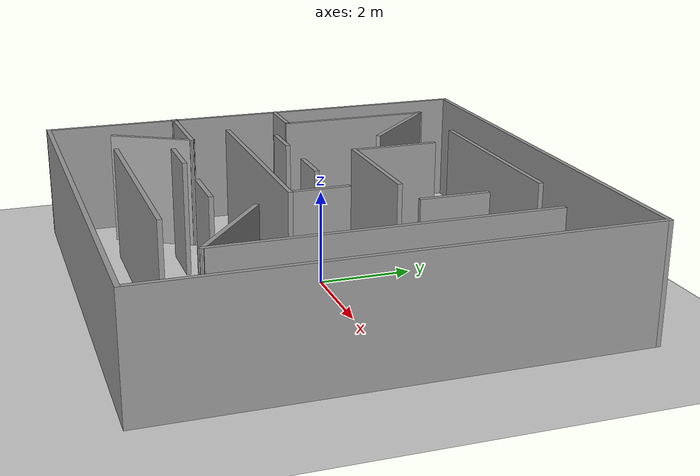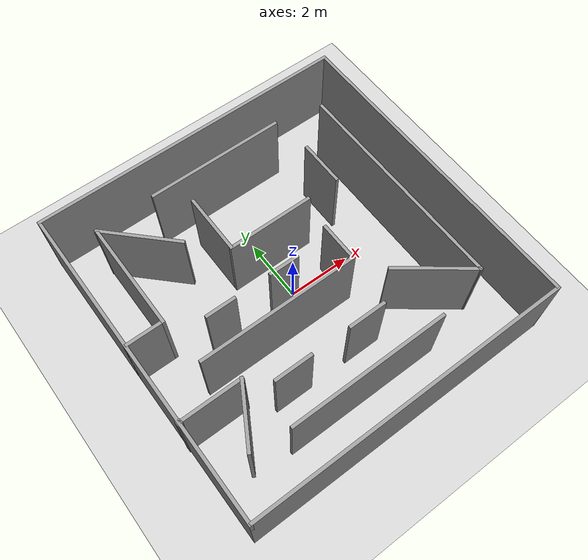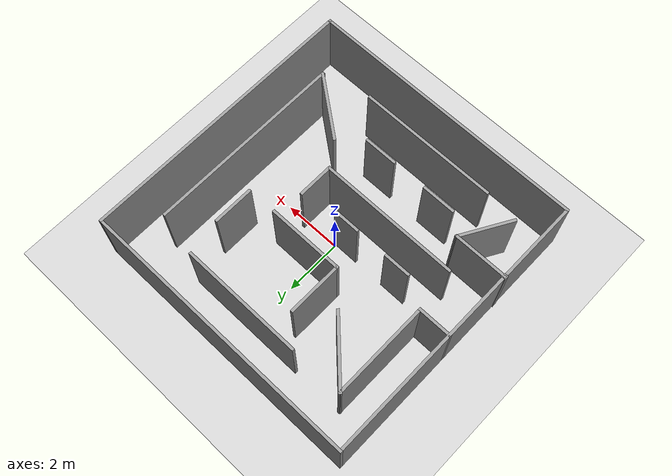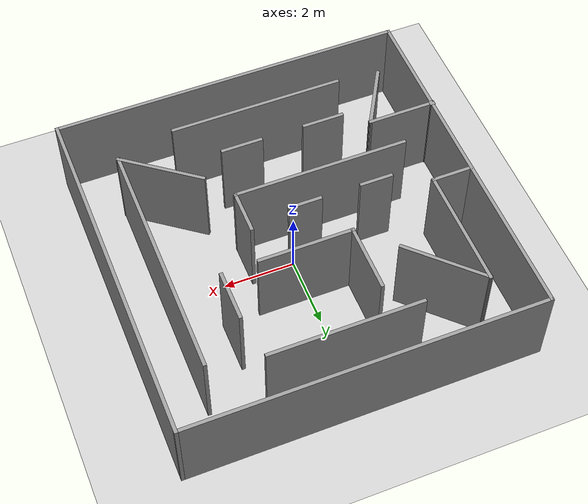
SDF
<sdf version="1.4">
  <world name="default">

    <scene>
      <ambient>0.4 0.4 0.4 1</ambient>
      <background>0.7 0.7 0.7 1</background>
      <shadows>true</shadows>
    </scene>

    <!-- A global light source -->
    <include>
      <uri>model://sun</uri>
    </include>

    <!-- A ground plane -->
    <include>
      <uri>model://ground_plane</uri>
    </include>

    <physics type="ode">
      <real_time_update_rate>1000.0</real_time_update_rate>
      <max_step_size>0.001</max_step_size>
      <real_time_factor>1</real_time_factor>
      <ode>
        <solver>
          <type>quick</type>
          <iters>150</iters>
          <precon_iters>0</precon_iters>
          <sor>1.400000</sor>
          <use_dynamic_moi_rescaling>1</use_dynamic_moi_rescaling>
        </solver>
        <constraints>
          <cfm>0.00001</cfm>
          <erp>0.2</erp>
          <contact_max_correcting_vel>2000.000000</contact_max_correcting_vel>
          <contact_surface_layer>0.01000</contact_surface_layer>
        </constraints>
      </ode>
    </physics>

    <!-- A turtlebot symbol -->
    <include>
      <uri>models://maze_world</uri>
    </include>

  </world>

</sdf>

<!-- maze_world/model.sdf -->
<sdf version='1.7'>
  <model name='Untitled'>
    <pose>-0.0125 0 0 0 -0 0</pose>
    <link name='Wall_0'>
      <collision name='Wall_0_Collision'>
        <geometry>
          <box>
            <size>10 0.1 2.5</size>
          </box>
        </geometry>
        <pose>0 0 1.25 0 -0 0</pose>
      </collision>
      <visual name='Wall_0_Visual'>
        <pose>0 0 1.25 0 -0 0</pose>
        <geometry>
          <box>
            <size>10 0.1 2.5</size>
          </box>
        </geometry>
        <material>
          <script>
            <uri>file://media/materials/scripts/gazebo.material</uri>
            <name>Gazebo/Grey</name>
          </script>
          <ambient>1 1 1 1</ambient>
        </material>
        <meta>
          <layer>0</layer>
        </meta>
      </visual>
      <pose>0.0125 4.962 0 0 -0 3.14159</pose>
    </link>
    <link name='Wall_12'>
      <collision name='Wall_12_Collision'>
        <geometry>
          <box>
            <size>10.024 0.1 2.5</size>
          </box>
        </geometry>
        <pose>0 0 1.25 0 -0 0</pose>
      </collision>
      <visual name='Wall_12_Visual'>
        <pose>0 0 1.25 0 -0 0</pose>
        <geometry>
          <box>
            <size>10.024 0.1 2.5</size>
          </box>
        </geometry>
        <material>
          <script>
            <uri>file://media/materials/scripts/gazebo.material</uri>
            <name>Gazebo/Grey</name>
          </script>
          <ambient>1 1 1 1</ambient>
        </material>
        <meta>
          <layer>0</layer>
        </meta>
      </visual>
      <pose>-4.9375 0 0 0 -0 -1.5708</pose>
    </link>
    <link name='Wall_13'>
      <collision name='Wall_13_Collision'>
        <geometry>
          <box>
            <size>10 0.1 2.5</size>
          </box>
        </geometry>
        <pose>0 0 1.25 0 -0 0</pose>
      </collision>
      <visual name='Wall_13_Visual'>
        <pose>0 0 1.25 0 -0 0</pose>
        <geometry>
          <box>
            <size>10 0.1 2.5</size>
          </box>
        </geometry>
        <material>
          <script>
            <uri>file://media/materials/scripts/gazebo.material</uri>
            <name>Gazebo/Grey</name>
          </script>
          <ambient>1 1 1 1</ambient>
        </material>
        <meta>
          <layer>0</layer>
        </meta>
      </visual>
      <pose>0.0125 -4.962 0 0 -0 0</pose>
    </link>
    <link name='Wall_14'>
      <collision name='Wall_14_Collision'>
        <geometry>
          <box>
            <size>10.024 0.1 2.5</size>
          </box>
        </geometry>
        <pose>0 0 1.25 0 -0 0</pose>
      </collision>
      <visual name='Wall_14_Visual'>
        <pose>0 0 1.25 0 -0 0</pose>
        <geometry>
          <box>
            <size>10.024 0.1 2.5</size>
          </box>
        </geometry>
        <material>
          <script>
            <uri>file://media/materials/scripts/gazebo.material</uri>
            <name>Gazebo/Grey</name>
          </script>
          <ambient>1 1 1 1</ambient>
        </material>
        <meta>
          <layer>0</layer>
        </meta>
      </visual>
      <pose>4.9625 0 0 0 -0 1.5708</pose>
    </link>
    <link name='Wall_46'>
      <collision name='Wall_46_Collision'>
        <geometry>
          <box>
            <size>4.312 0.1 2.5</size>
          </box>
        </geometry>
        <pose>0 0 1.25 0 -0 0</pose>
      </collision>
      <visual name='Wall_46_Visual'>
        <pose>0 0 1.25 0 -0 0</pose>
        <geometry>
          <box>
            <size>4.312 0.1 2.5</size>
          </box>
        </geometry>
        <material>
          <script>
            <uri>file://media/materials/scripts/gazebo.material</uri>
            <name>Gazebo/Grey</name>
          </script>
          <ambient>1 1 1 1</ambient>
        </material>
        <meta>
          <layer>0</layer>
        </meta>
      </visual>
      <pose>0.1275 3.827 0 0 -0 0</pose>
    </link>
    <link name='Wall_50'>
      <collision name='Wall_50_Collision'>
        <geometry>
          <box>
            <size>4.9497 0.1 2.5</size>
          </box>
        </geometry>
        <pose>0 0 1.25 0 -0 0</pose>
      </collision>
      <visual name='Wall_50_Visual'>
        <pose>0 0 1.25 0 -0 0</pose>
        <geometry>
          <box>
            <size>4.9497 0.1 2.5</size>
          </box>
        </geometry>
        <material>
          <script>
            <uri>file://media/materials/scripts/gazebo.material</uri>
            <name>Gazebo/Grey</name>
          </script>
          <ambient>1 1 1 1</ambient>
        </material>
        <meta>
          <layer>0</layer>
        </meta>
      </visual>
      <pose>-0.3925 -3.745 0 0 -0 0</pose>
    </link>
    <link name='Wall_55'>
      <collision name='Wall_55_Collision'>
        <geometry>
          <box>
            <size>1.217 0.1 2.5</size>
          </box>
        </geometry>
        <pose>0 0 1.25 0 -0 0</pose>
      </collision>
      <visual name='Wall_55_Visual'>
        <pose>0 0 1.25 0 -0 0</pose>
        <geometry>
          <box>
            <size>1.217 0.1 2.5</size>
          </box>
        </geometry>
        <material>
          <script>
            <uri>file://media/materials/scripts/gazebo.material</uri>
            <name>Gazebo/Grey</name>
          </script>
          <ambient>1 1 1 1</ambient>
        </material>
        <meta>
          <layer>0</layer>
        </meta>
      </visual>
      <pose>-4.379 0.447 0 0 -0 0</pose>
    </link>
    <link name='Wall_56'>
      <collision name='Wall_56_Collision'>
        <geometry>
          <box>
            <size>3.45018 0.1 2.5</size>
          </box>
        </geometry>
        <pose>0 0 1.25 0 -0 0</pose>
      </collision>
      <visual name='Wall_56_Visual'>
        <pose>0 0 1.25 0 -0 0</pose>
        <geometry>
          <box>
            <size>3.45018 0.1 2.5</size>
          </box>
        </geometry>
        <material>
          <script>
            <uri>file://media/materials/scripts/gazebo.material</uri>
            <name>Gazebo/Grey</name>
          </script>
          <ambient>1 1 1 1</ambient>
        </material>
        <meta>
          <layer>0</layer>
        </meta>
      </visual>
      <pose>-3.8205 2.122 0 0 -0 1.5708</pose>
    </link>
    <link name='Wall_57'>
      <collision name='Wall_57_Collision'>
        <geometry>
          <box>
            <size>2.50134 0.1 2.5</size>
          </box>
        </geometry>
        <pose>0 0 1.25 0 -0 0</pose>
      </collision>
      <visual name='Wall_57_Visual'>
        <pose>0 0 1.25 0 -0 0</pose>
        <geometry>
          <box>
            <size>2.50134 0.1 2.5</size>
          </box>
        </geometry>
        <material>
          <script>
            <uri>file://media/materials/scripts/gazebo.material</uri>
            <name>Gazebo/Grey</name>
          </script>
          <ambient>1 1 1 1</ambient>
        </material>
        <meta>
          <layer>0</layer>
        </meta>
      </visual>
      <pose>-2.9715 2.948 0 0 -0 -0.785398</pose>
    </link>
    <link name='Wall_59'>
      <collision name='Wall_59_Collision'>
        <geometry>
          <box>
            <size>6.937 0.1 2.5</size>
          </box>
        </geometry>
        <pose>0 0 1.25 0 -0 0</pose>
      </collision>
      <visual name='Wall_59_Visual'>
        <pose>0 0 1.25 0 -0 0</pose>
        <geometry>
          <box>
            <size>6.937 0.1 2.5</size>
          </box>
        </geometry>
        <material>
          <script>
            <uri>file://media/materials/scripts/gazebo.material</uri>
            <name>Gazebo/Grey</name>
          </script>
          <ambient>1 1 1 1</ambient>
        </material>
        <meta>
          <layer>0</layer>
        </meta>
      </visual>
      <pose>3.7295 0.0815 0 0 -0 -1.5708</pose>
    </link>
    <link name='Wall_60'>
      <collision name='Wall_60_Collision'>
        <geometry>
          <box>
            <size>2.5 0.1 2.5</size>
          </box>
        </geometry>
        <pose>0 0 1.25 0 -0 0</pose>
      </collision>
      <visual name='Wall_60_Visual'>
        <pose>0 0 1.25 0 -0 0</pose>
        <geometry>
          <box>
            <size>2.5 0.1 2.5</size>
          </box>
        </geometry>
        <material>
          <script>
            <uri>file://media/materials/scripts/gazebo.material</uri>
            <name>Gazebo/Grey</name>
          </script>
          <ambient>1 1 1 1</ambient>
        </material>
        <meta>
          <layer>0</layer>
        </meta>
      </visual>
      <pose>2.7765 -2.608 0 0 -0 2.48859</pose>
    </link>
    <link name='Wall_62'>
      <collision name='Wall_62_Collision'>
        <geometry>
          <box>
            <size>4.974 0.1 2.5</size>
          </box>
        </geometry>
        <pose>0 0 1.25 0 -0 0</pose>
      </collision>
      <visual name='Wall_62_Visual'>
        <pose>0 0 1.25 0 -0 0</pose>
        <geometry>
          <box>
            <size>4.974 0.1 2.5</size>
          </box>
        </geometry>
        <material>
          <script>
            <uri>file://media/materials/scripts/gazebo.material</uri>
            <name>Gazebo/Grey</name>
          </script>
          <ambient>1 1 1 1</ambient>
        </material>
        <meta>
          <layer>0</layer>
        </meta>
      </visual>
      <pose>-1.2025 -1.039 0 0 -0 3.14159</pose>
    </link>
    <link name='Wall_65'>
      <collision name='Wall_65_Collision'>
        <geometry>
          <box>
            <size>1.28975 0.1 2.5</size>
          </box>
        </geometry>
        <pose>0 0 1.25 0 -0 0</pose>
      </collision>
      <visual name='Wall_65_Visual'>
        <pose>0 0 1.25 0 -0 0</pose>
        <geometry>
          <box>
            <size>1.28975 0.1 2.5</size>
          </box>
        </geometry>
        <material>
          <script>
            <uri>file://media/materials/scripts/gazebo.material</uri>
            <name>Gazebo/Grey</name>
          </script>
          <ambient>1 1 1 1</ambient>
        </material>
        <meta>
          <layer>0</layer>
        </meta>
      </visual>
      <pose>1.2345 -0.444 0 0 -0 -1.5708</pose>
    </link>
    <link name='Wall_68'>
      <collision name='Wall_68_Collision'>
        <geometry>
          <box>
            <size>0.95 0.1 2.5</size>
          </box>
        </geometry>
        <pose>0 0 1.25 0 -0 0</pose>
      </collision>
      <visual name='Wall_68_Visual'>
        <pose>0 0 1.25 0 -0 0</pose>
        <geometry>
          <box>
            <size>0.95 0.1 2.5</size>
          </box>
        </geometry>
        <material>
          <script>
            <uri>file://media/materials/scripts/gazebo.material</uri>
            <name>Gazebo/Grey</name>
          </script>
          <ambient>1 1 1 1</ambient>
        </material>
        <meta>
          <layer>0</layer>
        </meta>
      </visual>
      <pose>-2.4135 -0.113 0 0 -0 0</pose>
    </link>
    <link name='Wall_71'>
      <collision name='Wall_71_Collision'>
        <geometry>
          <box>
            <size>0.95 0.1 2.5</size>
          </box>
        </geometry>
        <pose>0 0 1.25 0 -0 0</pose>
      </collision>
      <visual name='Wall_71_Visual'>
        <pose>0 0 1.25 0 -0 0</pose>
        <geometry>
          <box>
            <size>0.95 0.1 2.5</size>
          </box>
        </geometry>
        <material>
          <script>
            <uri>file://media/materials/scripts/gazebo.material</uri>
            <name>Gazebo/Grey</name>
          </script>
          <ambient>1 1 1 1</ambient>
        </material>
        <meta>
          <layer>0</layer>
        </meta>
      </visual>
      <pose>-0.3765 -0.113 0 0 -0 0</pose>
    </link>
    <link name='Wall_73'>
      <collision name='Wall_73_Collision'>
        <geometry>
          <box>
            <size>1.45 0.1 2.5</size>
          </box>
        </geometry>
        <pose>0 0 1.25 0 -0 0</pose>
      </collision>
      <visual name='Wall_73_Visual'>
        <pose>0 0 1.25 0 -0 0</pose>
        <geometry>
          <box>
            <size>1.45 0.1 2.5</size>
          </box>
        </geometry>
        <material>
          <script>
            <uri>file://media/materials/scripts/gazebo.material</uri>
            <name>Gazebo/Grey</name>
          </script>
          <ambient>1 1 1 1</ambient>
        </material>
        <meta>
          <layer>0</layer>
        </meta>
      </visual>
      <pose>2.4515 1.88325 0 0 -0 -1.5708</pose>
    </link>
    <link name='Wall_78'>
      <collision name='Wall_78_Collision'>
        <geometry>
          <box>
            <size>1.2 0.1 2.5</size>
          </box>
        </geometry>
        <pose>0 0 1.25 0 -0 0</pose>
      </collision>
      <visual name='Wall_78_Visual'>
        <pose>0 0 1.25 0 -0 0</pose>
        <geometry>
          <box>
            <size>1.2 0.1 2.5</size>
          </box>
        </geometry>
        <material>
          <script>
            <uri>file://media/materials/scripts/gazebo.material</uri>
            <name>Gazebo/Grey</name>
          </script>
          <ambient>1 1 1 1</ambient>
        </material>
        <meta>
          <layer>0</layer>
        </meta>
      </visual>
      <pose>-1.8965 -2.56 0 0 -0 0</pose>
    </link>
    <link name='Wall_80'>
      <collision name='Wall_80_Collision'>
        <geometry>
          <box>
            <size>1.2 0.1 2.5</size>
          </box>
        </geometry>
        <pose>0 0 1.25 0 -0 0</pose>
      </collision>
      <visual name='Wall_80_Visual'>
        <pose>0 0 1.25 0 -0 0</pose>
        <geometry>
          <box>
            <size>1.2 0.1 2.5</size>
          </box>
        </geometry>
        <material>
          <script>
            <uri>file://media/materials/scripts/gazebo.material</uri>
            <name>Gazebo/Grey</name>
          </script>
          <ambient>1 1 1 1</ambient>
        </material>
        <meta>
          <layer>0</layer>
        </meta>
      </visual>
      <pose>0.4825 -2.56 0 0 -0 0</pose>
    </link>
    <link name='Wall_82'>
      <collision name='Wall_82_Collision'>
        <geometry>
          <box>
            <size>0.15 0.15 2.5</size>
          </box>
        </geometry>
        <pose>0 0 1.25 0 -0 0</pose>
      </collision>
      <visual name='Wall_82_Visual'>
        <pose>0 0 1.25 0 -0 0</pose>
        <geometry>
          <box>
            <size>0.15 0.15 2.5</size>
          </box>
        </geometry>
        <material>
          <script>
            <uri>file://media/materials/scripts/gazebo.material</uri>
            <name>Gazebo/Grey</name>
          </script>
          <ambient>1 1 1 1</ambient>
        </material>
        <meta>
          <layer>0</layer>
        </meta>
      </visual>
      <pose>-4.9375 -2.018 0 0 -0 0</pose>
    </link>
    <link name='Wall_85'>
      <collision name='Wall_85_Collision'>
        <geometry>
          <box>
            <size>1.95 0.1 2.5</size>
          </box>
        </geometry>
        <pose>0 0 1.25 0 -0 0</pose>
      </collision>
      <visual name='Wall_85_Visual'>
        <pose>0 0 1.25 0 -0 0</pose>
        <geometry>
          <box>
            <size>1.95 0.1 2.5</size>
          </box>
        </geometry>
        <material>
          <script>
            <uri>file://media/materials/scripts/gazebo.material</uri>
            <name>Gazebo/Grey</name>
          </script>
          <ambient>1 1 1 1</ambient>
        </material>
        <meta>
          <layer>0</layer>
        </meta>
      </visual>
      <pose>-4.0125 -2.018 0 0 -0 0</pose>
    </link>
    <link name='Wall_86'>
      <collision name='Wall_86_Collision'>
        <geometry>
          <box>
            <size>1.95 0.1 2.5</size>
          </box>
        </geometry>
        <pose>0 0 1.25 0 -0 0</pose>
      </collision>
      <visual name='Wall_86_Visual'>
        <pose>0 0 1.25 0 -0 0</pose>
        <geometry>
          <box>
            <size>1.95 0.1 2.5</size>
          </box>
        </geometry>
        <material>
          <script>
            <uri>file://media/materials/scripts/gazebo.material</uri>
            <name>Gazebo/Grey</name>
          </script>
          <ambient>1 1 1 1</ambient>
        </material>
        <meta>
          <layer>0</layer>
        </meta>
      </visual>
      <pose>-3.55 -2.819 0 0 -0 -2.09443</pose>
    </link>
    <link name='Wall_88'>
      <collision name='Wall_88_Collision'>
        <geometry>
          <box>
            <size>1.95 0.1 2.5</size>
          </box>
        </geometry>
        <pose>0 0 1.25 0 -0 0</pose>
      </collision>
      <visual name='Wall_88_Visual'>
        <pose>0 0 1.25 0 -0 0</pose>
        <geometry>
          <box>
            <size>1.95 0.1 2.5</size>
          </box>
        </geometry>
        <material>
          <script>
            <uri>file://media/materials/scripts/gazebo.material</uri>
            <name>Gazebo/Grey</name>
          </script>
          <ambient>1 1 1 1</ambient>
        </material>
        <meta>
          <layer>0</layer>
        </meta>
      </visual>
      <pose>-1.1835 2.086 0 0 -0 -1.5708</pose>
    </link>
    <link name='Wall_89'>
      <collision name='Wall_89_Collision'>
        <geometry>
          <box>
            <size>2.70009 0.1 2.5</size>
          </box>
        </geometry>
        <pose>0 0 1.25 0 -0 0</pose>
      </collision>
      <visual name='Wall_89_Visual'>
        <pose>0 0 1.25 0 -0 0</pose>
        <geometry>
          <box>
            <size>2.70009 0.1 2.5</size>
          </box>
        </geometry>
        <material>
          <script>
            <uri>file://media/materials/scripts/gazebo.material</uri>
            <name>Gazebo/Grey</name>
          </script>
          <ambient>1 1 1 1</ambient>
        </material>
        <meta>
          <layer>0</layer>
        </meta>
      </visual>
      <pose>0.1165 1.161 0 0 -0 0</pose>
    </link>
    <static>1</static>
  </model>
</sdf>
